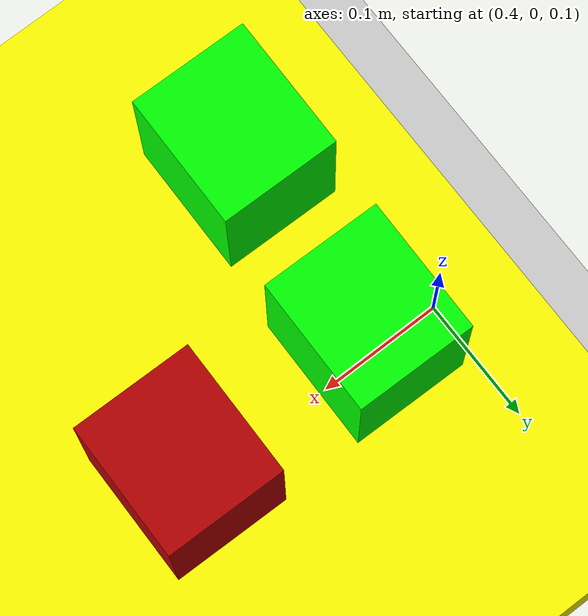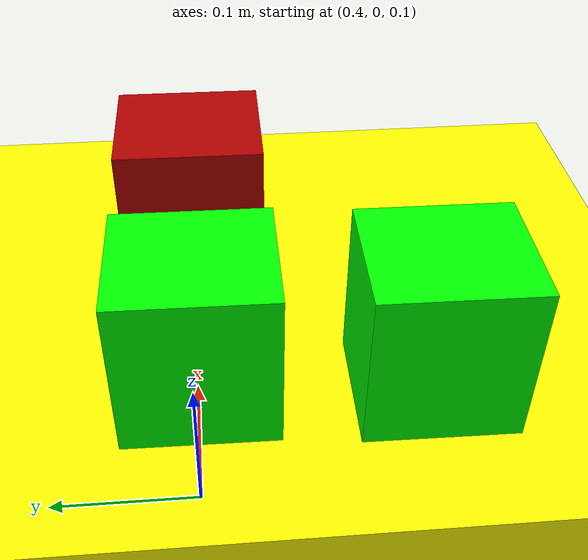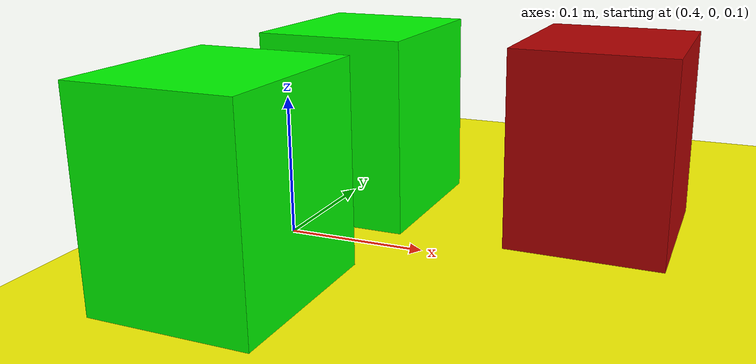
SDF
<sdf version="1.6">
 <world name="default">
  <light name="sun" type="directional">
   <pose>0 0 10 0 -0 0</pose>
   <diffuse>0.8 0.8 0.8 1</diffuse>
   <specular>0.1 0.1 0.1 1</specular>
   <attenuation>
    <range>1000</range>
    <constant>0.9</constant>
    <linear>0.01</linear>
    <quadratic>0.001</quadratic>
   </attenuation>
   <direction>-0.5 0.5 -1</direction>
  </light>
  <model name="ground_plane">
   <static>1</static>
   <link name="link">
    <collision name="collision">
     <geometry><plane><normal>0 0 1</normal><size>100 100</size></plane></geometry>
     <surface><friction><ode><mu>100</mu><mu2>50</mu2></ode></friction></surface>
    </collision>
    <visual name="visual">
     <cast_shadows>0</cast_shadows>
     <geometry><plane><normal>0 0 1</normal><size>100 100</size></plane></geometry>
     <material>
      <script><uri>file://media/materials/scripts/gazebo.material</uri><name>Gazebo/Grey</name></script>
     </material>
    </visual>
   </link>
  </model>
  <gravity>0 0 -9.8</gravity>
  <magnetic_field>6e-06 2.3e-05 -4.2e-05</magnetic_field>
  <atmosphere type="adiabatic"/>
  <physics name="default_physics" default="0" type="ode">
   <max_step_size>0.001</max_step_size>
   <real_time_factor>1</real_time_factor>
   <real_time_update_rate>1000</real_time_update_rate>
  </physics>
  <scene><ambient>0.4 0.4 0.4 1</ambient><background>0.7 0.7 0.7 1</background><shadows>1</shadows></scene>
  <spherical_coordinates>
   <surface_model>EARTH_WGS84</surface_model>
   <latitude_deg>0</latitude_deg>
   <longitude_deg>0</longitude_deg>
   <elevation>0</elevation>
   <heading_deg>0</heading_deg>
  </spherical_coordinates>
  <model name="target_box">
   <link name="link">
    <inertial>
     <mass>1</mass>
     <inertia>
      <ixx>0.166667</ixx>
      <ixy>0</ixy>
      <ixz>0</ixz>
      <iyy>0.166667</iyy>
      <iyz>0</iyz>
      <izz>0.166667</izz>
     </inertia>
    </inertial>
    <visual name="ModelPreview_1::link::visual_1">
     <geometry><box><size>0.093811 0.10635 0.119204</size></box></geometry>
     <material>
      <script><name>Gazebo/Grey</name><uri>file://media/materials/scripts/gazebo.material</uri></script>
      <ambient>0.3 0.3 0.3 1</ambient>
      <diffuse>0.7 0 0 1</diffuse>
      <specular>0.01 0.01 0.01 1</specular>
      <emissive>0 0 0 1</emissive>
      <shader type="vertex"><normal_map>__default__</normal_map></shader>
     </material>
    </visual>
    <visual name="visual">
     <geometry><box><size>0.093811 0.10635 0.119204</size></box></geometry>
     <material>
      <script><name>Gazebo/Grey</name><uri>file://media/materials/scripts/gazebo.material</uri></script>
      <ambient>0.3 0.3 0.3 1</ambient>
      <diffuse>1 0 0 1</diffuse>
      <specular>0.01 0.01 0.01 1</specular>
      <emissive>0 0 0 1</emissive>
      <shader type="vertex"><normal_map>__default__</normal_map></shader>
     </material>
    </visual>
    <collision name="collision">
     <geometry><box><size>0.093811 0.10635 0.119204</size></box></geometry>
     <surface>
      <friction>
       <ode><mu>1</mu><mu2>1</mu2><fdir1>0 0 0</fdir1><slip1>0</slip1><slip2>0</slip2></ode>
       <torsional>
        <coefficient>1</coefficient>
        <patch_radius>0</patch_radius>
        <surface_radius>0</surface_radius>
        <use_patch_radius>1</use_patch_radius>
        <ode><slip>0</slip></ode>
       </torsional>
      </friction>
      <bounce><restitution_coefficient>0</restitution_coefficient><threshold>1e+06</threshold></bounce>
      <contact>
       <collide_without_contact>0</collide_without_contact>
       <collide_without_contact_bitmask>1</collide_without_contact_bitmask>
       <collide_bitmask>1</collide_bitmask>
       <ode>
        <soft_cfm>0</soft_cfm>
        <soft_erp>0.2</soft_erp>
        <kp>1e+13</kp>
        <kd>1</kd>
        <max_vel>0.01</max_vel>
        <min_depth>0</min_depth>
       </ode>
       <bullet>
        <split_impulse>1</split_impulse>
        <split_impulse_penetration_threshold>-0.01</split_impulse_penetration_threshold>
        <soft_cfm>0</soft_cfm>
        <soft_erp>0.2</soft_erp>
        <kp>1e+13</kp>
        <kd>1</kd>
       </bullet>
      </contact>
     </surface>
    </collision>
   </link>
   <static>0</static>
   <pose>0.621216 -0.002651 0.194044 0 1.2e-05 -0.010808</pose>
  </model>
  <model name="green_box_0">
   <link name="link">
    <inertial>
     <mass>1</mass>
     <inertia>
      <ixx>0.166667</ixx>
      <ixy>0</ixy>
      <ixz>0</ixz>
      <iyy>0.166667</iyy>
      <iyz>0</iyz>
      <izz>0.166667</izz>
     </inertia>
    </inertial>
    <visual name="visual">
     <geometry><box><size>0.093811 0.10635 0.119204</size></box></geometry>
     <material>
      <script><name>Gazebo/Grey</name><uri>file://media/materials/scripts/gazebo.material</uri></script>
      <ambient>0.3 0.3 0.3 1</ambient>
      <diffuse>0 1 0 0</diffuse>
      <specular>0 1 0 0</specular>
      <emissive>0 0 0 1</emissive>
      <shader type="vertex"><normal_map>__default__</normal_map></shader>
     </material>
    </visual>
    <collision name="collision">
     <geometry><box><size>0.093811 0.10635 0.119204</size></box></geometry>
     <surface>
      <friction>
       <ode><mu>1</mu><mu2>1</mu2><fdir1>0 0 0</fdir1><slip1>0</slip1><slip2>0</slip2></ode>
       <torsional>
        <coefficient>1</coefficient>
        <patch_radius>0</patch_radius>
        <surface_radius>0</surface_radius>
        <use_patch_radius>1</use_patch_radius>
        <ode><slip>0</slip></ode>
       </torsional>
      </friction>
      <bounce><restitution_coefficient>0</restitution_coefficient><threshold>1e+06</threshold></bounce>
      <contact>
       <collide_without_contact>0</collide_without_contact>
       <collide_without_contact_bitmask>1</collide_without_contact_bitmask>
       <collide_bitmask>1</collide_bitmask>
       <ode>
        <soft_cfm>0</soft_cfm>
        <soft_erp>0.2</soft_erp>
        <kp>1e+13</kp>
        <kd>1</kd>
        <max_vel>0.01</max_vel>
        <min_depth>0</min_depth>
       </ode>
       <bullet>
        <split_impulse>1</split_impulse>
        <split_impulse_penetration_threshold>-0.01</split_impulse_penetration_threshold>
        <soft_cfm>0</soft_cfm>
        <soft_erp>0.2</soft_erp>
        <kp>1e+13</kp>
        <kd>1</kd>
       </bullet>
      </contact>
     </surface>
    </collision>
   </link>
   <static>0</static>
   <pose>0.462504 -0.002653 0.194046 -0 1.2e-05 -0.010807</pose>
  </model>
  <model name="unit_box_0_0_0">
   <link name="link">
    <inertial>
     <mass>100</mass>
     <inertia>
      <ixx>0.166667</ixx>
      <ixy>0</ixy>
      <ixz>0</ixz>
      <iyy>0.166667</iyy>
      <iyz>0</iyz>
      <izz>0.166667</izz>
     </inertia>
    </inertial>
    <visual name="visual">
     <geometry><box><size>1 1 0.134445</size></box></geometry>
     <material>
      <script><name>Gazebo/Grey</name><uri>file://media/materials/scripts/gazebo.material</uri></script>
      <ambient>0.3 0.3 0.3 1</ambient>
      <diffuse>1 0.99 0 1</diffuse>
      <specular>0.01 0.01 0.01 1</specular>
      <emissive>0 0 0 1</emissive>
      <shader type="vertex"><normal_map>__default__</normal_map></shader>
     </material>
    </visual>
    <collision name="collision">
     <geometry><box><size>1 1 0.134445</size></box></geometry>
     <surface>
      <friction>
       <ode><mu>1</mu><mu2>1</mu2><fdir1>0 0 0</fdir1><slip1>0</slip1><slip2>0</slip2></ode>
       <torsional>
        <coefficient>1</coefficient>
        <patch_radius>0</patch_radius>
        <surface_radius>0</surface_radius>
        <use_patch_radius>1</use_patch_radius>
        <ode><slip>0</slip></ode>
       </torsional>
      </friction>
      <bounce><restitution_coefficient>0</restitution_coefficient><threshold>1e+06</threshold></bounce>
      <contact>
       <collide_without_contact>0</collide_without_contact>
       <collide_without_contact_bitmask>1</collide_without_contact_bitmask>
       <collide_bitmask>1</collide_bitmask>
       <ode>
        <soft_cfm>0</soft_cfm>
        <soft_erp>0.2</soft_erp>
        <kp>1e+13</kp>
        <kd>1</kd>
        <max_vel>0.01</max_vel>
        <min_depth>0</min_depth>
       </ode>
       <bullet>
        <split_impulse>1</split_impulse>
        <split_impulse_penetration_threshold>-0.01</split_impulse_penetration_threshold>
        <soft_cfm>0</soft_cfm>
        <soft_erp>0.2</soft_erp>
        <kp>1e+13</kp>
        <kd>1</kd>
       </bullet>
      </contact>
     </surface>
    </collision>
   </link>
   <static>1</static>
   <pose>0.839618 -0.060675 0.067217 0 1.2e-05 -7.4e-05</pose>
  </model>
  <model name="green_box_0_clone">
   <link name="link">
    <inertial>
     <mass>1</mass>
     <inertia>
      <ixx>0.166667</ixx>
      <ixy>0</ixy>
      <ixz>0</ixz>
      <iyy>0.166667</iyy>
      <iyz>0</iyz>
      <izz>0.166667</izz>
     </inertia>
    </inertial>
    <visual name="visual">
     <geometry><box><size>0.093811 0.10635 0.119204</size></box></geometry>
     <material>
      <script><name>Gazebo/Grey</name><uri>file://media/materials/scripts/gazebo.material</uri></script>
      <ambient>0.3 0.3 0.3 1</ambient>
      <diffuse>0 1 0 0</diffuse>
      <specular>0 1 0 0</specular>
      <emissive>0 0 0 1</emissive>
      <shader type="vertex"><normal_map>__default__</normal_map></shader>
     </material>
    </visual>
    <collision name="collision">
     <geometry><box><size>0.093811 0.10635 0.119204</size></box></geometry>
     <surface>
      <friction>
       <ode><mu>1</mu><mu2>1</mu2><fdir1>0 0 0</fdir1><slip1>0</slip1><slip2>0</slip2></ode>
       <torsional>
        <coefficient>1</coefficient>
        <patch_radius>0</patch_radius>
        <surface_radius>0</surface_radius>
        <use_patch_radius>1</use_patch_radius>
        <ode><slip>0</slip></ode>
       </torsional>
      </friction>
      <bounce><restitution_coefficient>0</restitution_coefficient><threshold>1e+06</threshold></bounce>
      <contact>
       <collide_without_contact>0</collide_without_contact>
       <collide_without_contact_bitmask>1</collide_without_contact_bitmask>
       <collide_bitmask>1</collide_bitmask>
       <ode>
        <soft_cfm>0</soft_cfm>
        <soft_erp>0.2</soft_erp>
        <kp>1e+13</kp>
        <kd>1</kd>
        <max_vel>0.01</max_vel>
        <min_depth>0</min_depth>
       </ode>
       <bullet>
        <split_impulse>1</split_impulse>
        <split_impulse_penetration_threshold>-0.01</split_impulse_penetration_threshold>
        <soft_cfm>0</soft_cfm>
        <soft_erp>0.2</soft_erp>
        <kp>1e+13</kp>
        <kd>1</kd>
       </bullet>
      </contact>
     </surface>
    </collision>
   </link>
   <static>0</static>
   <pose>0.455369 -0.16006 0.194046 -0 1.2e-05 -0.010807</pose>
  </model>
 </world>
</sdf>
